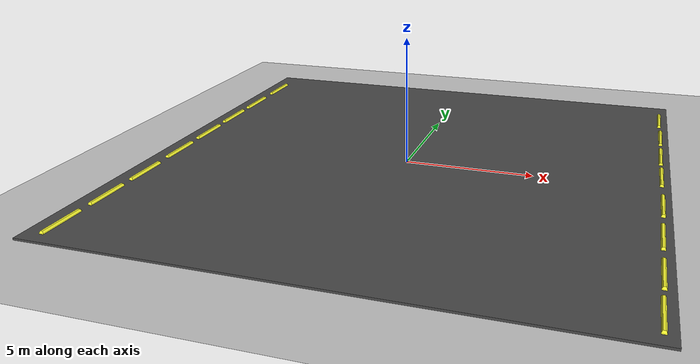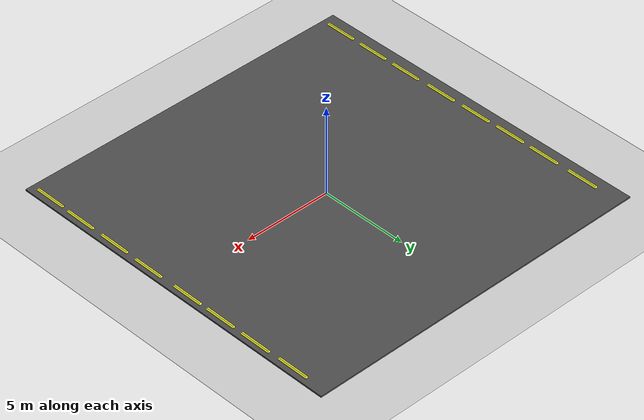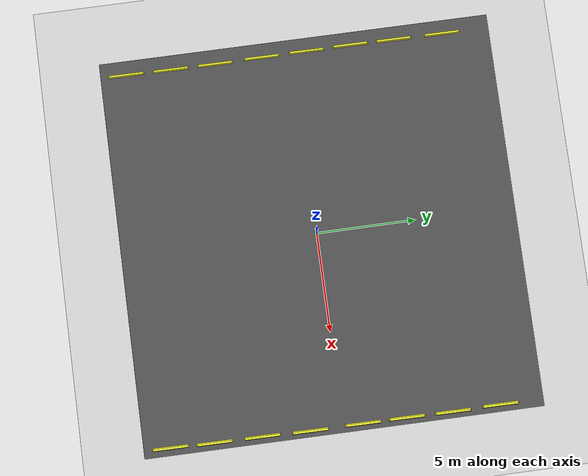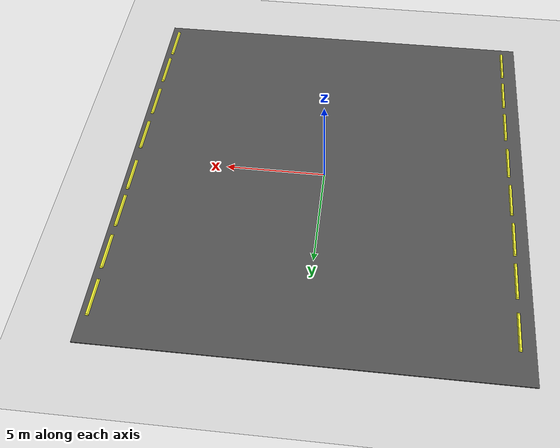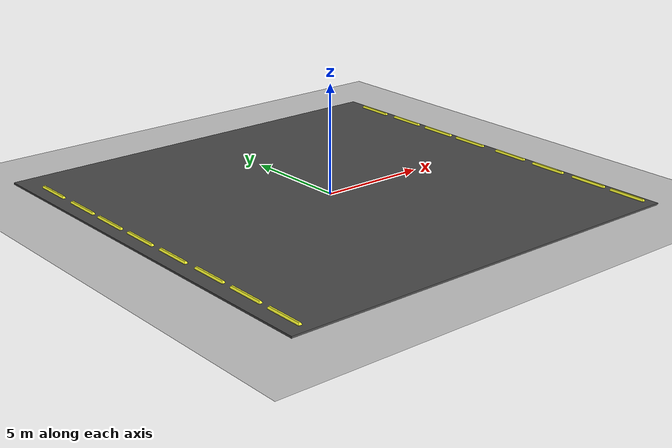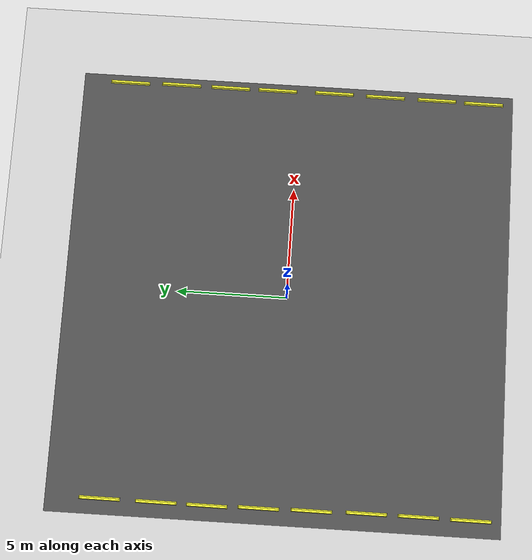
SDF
<sdf version="1.7">
 <world name="default">
  <light name="sun" type="directional">
   <pose>0 0 10 0 -0 0</pose>
   <diffuse>0.8 0.8 0.8 1</diffuse>
   <specular>0.2 0.2 0.2 1</specular>
   <attenuation>
    <range>1000</range>
    <constant>0.9</constant>
    <linear>0.01</linear>
    <quadratic>0.001</quadratic>
   </attenuation>
   <direction>-0.5 0.1 -0.9</direction>
   <spot><inner_angle>0</inner_angle><outer_angle>0</outer_angle><falloff>0</falloff></spot>
  </light>
  <model name="ground_plane">
   <static>1</static>
   <link name="link">
    <collision name="collision">
     <geometry><plane><normal>0 0 1</normal><size>100 100</size></plane></geometry>
     <surface>
      <contact><collide_bitmask>65535</collide_bitmask></contact>
      <friction><ode><mu>100</mu><mu2>50</mu2></ode></friction>
     </surface>
    </collision>
    <visual name="visual">
     <cast_shadows>0</cast_shadows>
     <geometry><plane><normal>0 0 1</normal><size>100 100</size></plane></geometry>
     <material>
      <script><uri>file://media/materials/scripts/gazebo.material</uri><name>Gazebo/Grey</name></script>
     </material>
    </visual>
   </link>
  </model>
  <gravity>0 0 -9.8</gravity>
  <magnetic_field>6e-06 2.3e-05 -4.2e-05</magnetic_field>
  <atmosphere type="adiabatic"/>
  <physics type="ode">
   <max_step_size>0.001</max_step_size>
   <real_time_factor>1</real_time_factor>
   <real_time_update_rate>1000</real_time_update_rate>
  </physics>
  <scene><ambient>0.4 0.4 0.4 1</ambient><background>0.7 0.7 0.7 1</background><shadows>1</shadows></scene>
  <spherical_coordinates>
   <surface_model>EARTH_WGS84</surface_model>
   <latitude_deg>0</latitude_deg>
   <longitude_deg>0</longitude_deg>
   <elevation>0</elevation>
   <heading_deg>0</heading_deg>
  </spherical_coordinates>
  <model name="asphalt_plane">
   <static>1</static>
   <link name="link">
    <collision name="collision"><geometry><box><size>20 20 0.1</size></box></geometry></collision>
    <visual name="visual">
     <cast_shadows>0</cast_shadows>
     <geometry><box><size>20 20 0.1</size></box></geometry>
     <material>
      <script>
       <uri>model://asphalt_plane/materials/scripts</uri>
       <uri>model://asphalt_plane/materials/textures</uri>
       <name>vrc/asphalt</name>
      </script>
     </material>
    </visual>
   </link>
   <pose>-0.00121 0.072768 0 0 -0 0</pose>
  </model>
  <model name="drc_practice_yellow_parking_block_0">
   <static>1</static>
   <link name="link">
    <visual name="visual">
     <geometry><mesh><uri>model://drc_practice_yellow_parking_block/meshes/block.dae</uri></mesh></geometry>
    </visual>
    <collision name="collision">
     <geometry><mesh><uri>model://drc_practice_yellow_parking_block/meshes/block.dae</uri></mesh></geometry>
    </collision>
   </link>
   <pose>-9.27044 -8.59896 0.074901 0 -0 0</pose>
  </model>
  <model name="drc_practice_yellow_parking_block_0_clone">
   <static>1</static>
   <link name="link">
    <visual name="visual">
     <geometry><mesh><uri>model://drc_practice_yellow_parking_block/meshes/block.dae</uri></mesh></geometry>
    </visual>
    <collision name="collision">
     <geometry><mesh><uri>model://drc_practice_yellow_parking_block/meshes/block.dae</uri></mesh></geometry>
    </collision>
   </link>
   <pose>-9.24961 -6.31587 0.074901 0 -0 0</pose>
  </model>
  <model name="drc_practice_yellow_parking_block_0_clone_0">
   <static>1</static>
   <link name="link">
    <visual name="visual">
     <geometry><mesh><uri>model://drc_practice_yellow_parking_block/meshes/block.dae</uri></mesh></geometry>
    </visual>
    <collision name="collision">
     <geometry><mesh><uri>model://drc_practice_yellow_parking_block/meshes/block.dae</uri></mesh></geometry>
    </collision>
   </link>
   <pose>-9.24702 -4.03199 0.074901 0 -0 0</pose>
  </model>
  <model name="drc_practice_yellow_parking_block_0_clone_5">
   <static>1</static>
   <link name="link">
    <visual name="visual">
     <geometry><mesh><uri>model://drc_practice_yellow_parking_block/meshes/block.dae</uri></mesh></geometry>
    </visual>
    <collision name="collision">
     <geometry><mesh><uri>model://drc_practice_yellow_parking_block/meshes/block.dae</uri></mesh></geometry>
    </collision>
   </link>
   <pose>-9.28159 -1.63276 0.074901 0 -0 0</pose>
  </model>
  <model name="drc_practice_yellow_parking_block_0_clone_6">
   <static>1</static>
   <link name="link">
    <visual name="visual">
     <geometry><mesh><uri>model://drc_practice_yellow_parking_block/meshes/block.dae</uri></mesh></geometry>
    </visual>
    <collision name="collision">
     <geometry><mesh><uri>model://drc_practice_yellow_parking_block/meshes/block.dae</uri></mesh></geometry>
    </collision>
   </link>
   <pose>-9.30678 0.68344 0.074901 0 -0 0</pose>
  </model>
  <model name="drc_practice_yellow_parking_block_0_clone_7">
   <static>1</static>
   <link name="link">
    <visual name="visual">
     <geometry><mesh><uri>model://drc_practice_yellow_parking_block/meshes/block.dae</uri></mesh></geometry>
    </visual>
    <collision name="collision">
     <geometry><mesh><uri>model://drc_practice_yellow_parking_block/meshes/block.dae</uri></mesh></geometry>
    </collision>
   </link>
   <pose>-9.33632 2.94571 0.074901 0 -0 0</pose>
  </model>
  <model name="drc_practice_yellow_parking_block_0_clone_8">
   <static>1</static>
   <link name="link">
    <visual name="visual">
     <geometry><mesh><uri>model://drc_practice_yellow_parking_block/meshes/block.dae</uri></mesh></geometry>
    </visual>
    <collision name="collision">
     <geometry><mesh><uri>model://drc_practice_yellow_parking_block/meshes/block.dae</uri></mesh></geometry>
    </collision>
   </link>
   <pose>-9.32201 5.17542 0.074901 0 -0 0</pose>
  </model>
  <model name="drc_practice_yellow_parking_block_0_clone_9">
   <static>1</static>
   <link name="link">
    <visual name="visual">
     <geometry><mesh><uri>model://drc_practice_yellow_parking_block/meshes/block.dae</uri></mesh></geometry>
    </visual>
    <collision name="collision">
     <geometry><mesh><uri>model://drc_practice_yellow_parking_block/meshes/block.dae</uri></mesh></geometry>
    </collision>
   </link>
   <pose>-9.31242 7.66569 0.074901 0 -0 0</pose>
  </model>
  <model name="drc_practice_yellow_parking_block_0_clone_1">
   <static>1</static>
   <link name="link">
    <visual name="visual">
     <geometry><mesh><uri>model://drc_practice_yellow_parking_block/meshes/block.dae</uri></mesh></geometry>
    </visual>
    <collision name="collision">
     <geometry><mesh><uri>model://drc_practice_yellow_parking_block/meshes/block.dae</uri></mesh></geometry>
    </collision>
   </link>
   <pose>9.60991 -8.57135 0.074901 0 -0 0</pose>
  </model>
  <model name="drc_practice_yellow_parking_block_0_clone_2">
   <static>1</static>
   <link name="link">
    <visual name="visual">
     <geometry><mesh><uri>model://drc_practice_yellow_parking_block/meshes/block.dae</uri></mesh></geometry>
    </visual>
    <collision name="collision">
     <geometry><mesh><uri>model://drc_practice_yellow_parking_block/meshes/block.dae</uri></mesh></geometry>
    </collision>
   </link>
   <pose>9.65074 -6.38779 0.074901 0 -0 0</pose>
  </model>
  <model name="drc_practice_yellow_parking_block_0_clone_3">
   <static>1</static>
   <link name="link">
    <visual name="visual">
     <geometry><mesh><uri>model://drc_practice_yellow_parking_block/meshes/block.dae</uri></mesh></geometry>
    </visual>
    <collision name="collision">
     <geometry><mesh><uri>model://drc_practice_yellow_parking_block/meshes/block.dae</uri></mesh></geometry>
    </collision>
   </link>
   <pose>9.66027 -3.99177 0.074901 0 -0 0</pose>
  </model>
  <model name="drc_practice_yellow_parking_block_0_clone_4">
   <static>1</static>
   <link name="link">
    <visual name="visual">
     <geometry><mesh><uri>model://drc_practice_yellow_parking_block/meshes/block.dae</uri></mesh></geometry>
    </visual>
    <collision name="collision">
     <geometry><mesh><uri>model://drc_practice_yellow_parking_block/meshes/block.dae</uri></mesh></geometry>
    </collision>
   </link>
   <pose>9.69445 -1.60459 0.074901 0 -0 0</pose>
  </model>
  <model name="drc_practice_yellow_parking_block_0_clone_10">
   <static>1</static>
   <link name="link">
    <visual name="visual">
     <geometry><mesh><uri>model://drc_practice_yellow_parking_block/meshes/block.dae</uri></mesh></geometry>
    </visual>
    <collision name="collision">
     <geometry><mesh><uri>model://drc_practice_yellow_parking_block/meshes/block.dae</uri></mesh></geometry>
    </collision>
   </link>
   <pose>9.67606 1.0291 0.074901 0 -0 0</pose>
  </model>
  <model name="drc_practice_yellow_parking_block_0_clone_11">
   <static>1</static>
   <link name="link">
    <visual name="visual">
     <geometry><mesh><uri>model://drc_practice_yellow_parking_block/meshes/block.dae</uri></mesh></geometry>
    </visual>
    <collision name="collision">
     <geometry><mesh><uri>model://drc_practice_yellow_parking_block/meshes/block.dae</uri></mesh></geometry>
    </collision>
   </link>
   <pose>9.66885 3.22504 0.074901 0 -0 0</pose>
  </model>
  <model name="drc_practice_yellow_parking_block_0_clone_12">
   <static>1</static>
   <link name="link">
    <visual name="visual">
     <geometry><mesh><uri>model://drc_practice_yellow_parking_block/meshes/block.dae</uri></mesh></geometry>
    </visual>
    <collision name="collision">
     <geometry><mesh><uri>model://drc_practice_yellow_parking_block/meshes/block.dae</uri></mesh></geometry>
    </collision>
   </link>
   <pose>9.68047 5.52583 0.074901 0 -0 0</pose>
  </model>
  <model name="drc_practice_yellow_parking_block_0_clone_13">
   <static>1</static>
   <link name="link">
    <visual name="visual">
     <geometry><mesh><uri>model://drc_practice_yellow_parking_block/meshes/block.dae</uri></mesh></geometry>
    </visual>
    <collision name="collision">
     <geometry><mesh><uri>model://drc_practice_yellow_parking_block/meshes/block.dae</uri></mesh></geometry>
    </collision>
   </link>
   <pose>9.64564 7.90736 0.074901 0 -0 0</pose>
  </model>
 </world>
</sdf>
